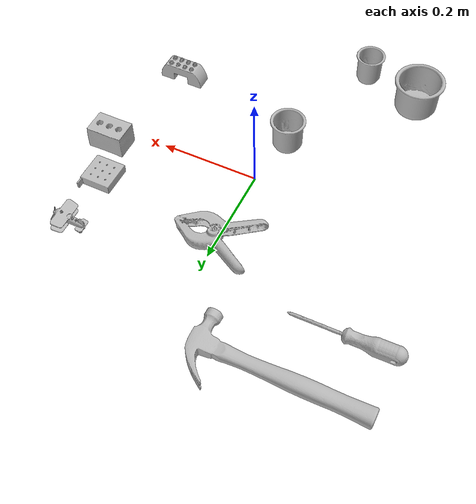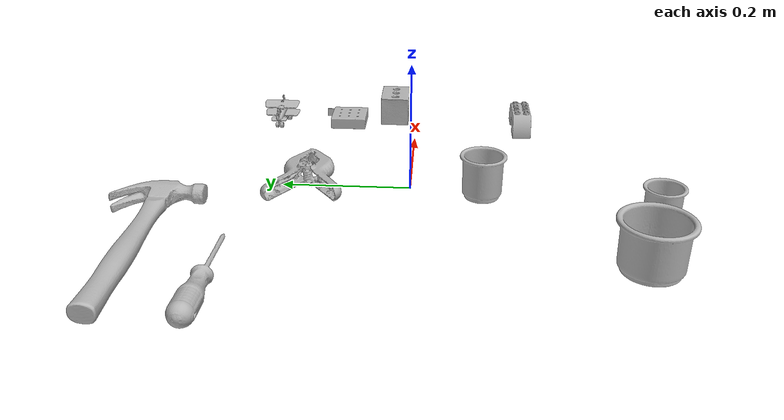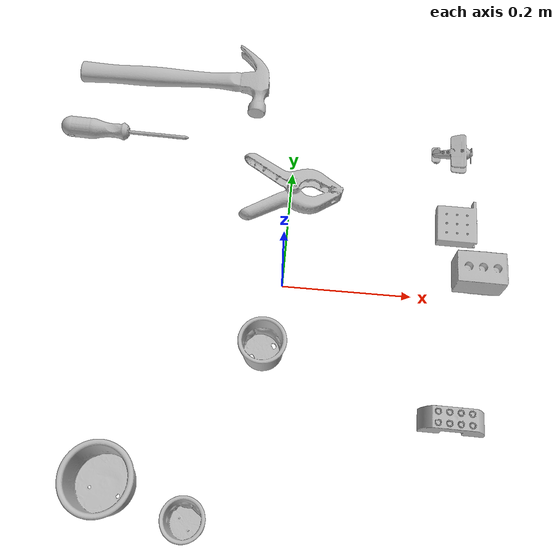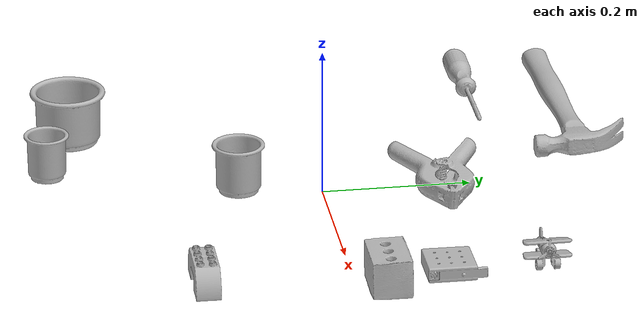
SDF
<?xml version="1.0" ?>
<sdf version="1.4">
  <world name="default">
    <light name="light1" type="point">
      <pose>0 0 1 0 0 0</pose>
      <diffuse>3 3 3 1</diffuse>
      <specular>3 3 3 1</specular>
    </light>
    <light name="light2" type="point">
      <pose>0 0.5 2 0 0 0</pose>
      <diffuse>1 1 1 1</diffuse>
      <specular>1 1 1 1</specular>
    </light>
    <light name="light3" type="point">
      <pose>0 0.5 2 0 0 0</pose>
      <diffuse>3 3 3 1</diffuse>
      <specular>3 3 3 1</specular>
    </light>
    <scene>
      <ambient>0.7 0.7 0.7</ambient>
    </scene>
    <model name="cup1">
      <link name="link_cup1">
        <collision name="default">
          <geometry>
            <mesh>
              <uri>model://j_cups/collision_meshes/collision.obj</uri>
              <scale>1.0 1.0 1.0</scale>
            </mesh>
          </geometry>
          <surface>
            <friction>
              <ode>
                <mu>0.5</mu>
                <mu2>0.5</mu2>
              </ode>
            </friction>
          </surface>
        </collision>
        <visual name="default">
          <geometry>
            <mesh>
              <uri>model://j_cups/visual_meshes/visual.dae</uri>
              <scale>1.0 1.0 1.0</scale>
            </mesh>
          </geometry>
        </visual>
        <inertial>
          <mass>0.1112113818526268</mass>
          <pose>0.0006164852529764175 0.0005398975918069482 -0.0013479019980877638 0.030303955005909274 0.03757984422505388 0.4386955526072484</pose>
          <inertia>
            <ixx>0.00016329347</ixx>
            <iyy>0.00016499148</iyy>
            <izz>0.00018824349</izz>
            <ixy>0</ixy>
            <ixz>0</ixz>
            <iyz>0</iyz>
          </inertia>
        </inertial>
      </link>
      <pose>-0.22005149722099304 -0.3199999928474426 0.037988994270563126 1.117587136756262e-08 -3.259629870438709e-09 1.1900556981265494e-07</pose>
    </model>
    <model name="cup2">
      <link name="link_cup2">
        <collision name="default">
          <geometry>
            <mesh>
              <uri>model://b_cups/collision_meshes/collision.obj</uri>
              <scale>1.0 1.0 1.0</scale>
            </mesh>
          </geometry>
          <surface>
            <friction>
              <ode>
                <mu>0.5</mu>
                <mu2>0.5</mu2>
              </ode>
            </friction>
          </surface>
        </collision>
        <visual name="default">
          <geometry>
            <mesh>
              <uri>model://b_cups/visual_meshes/visual.dae</uri>
              <scale>1.0 1.0 1.0</scale>
            </mesh>
          </geometry>
        </visual>
        <inertial>
          <mass>0.040588438510894775</mass>
          <pose>0.0005182006862014532 0.001805859268642962 -0.001338181202299893 0.11356319114734177 0.03872522211554688 -0.34569586720892936</pose>
          <inertia>
            <ixx>2.6567977e-05</ixx>
            <iyy>2.6063572e-05</iyy>
            <izz>2.235645e-05</izz>
            <ixy>0</ixy>
            <ixz>0</ixz>
            <iyz>0</iyz>
          </inertia>
        </inertial>
      </link>
      <pose>-0.10006058216094971 -0.35974207520484924 0.03199608996510506 -0.007628903243728663 -0.0038301339057181666 1.0297887028581817e-05</pose>
    </model>
    <model name="cup3">
      <link name="link_cup3">
        <collision name="default">
          <geometry>
            <mesh>
              <uri>model://d_cups/collision_meshes/collision.obj</uri>
              <scale>1.0 1.0 1.0</scale>
            </mesh>
          </geometry>
          <surface>
            <friction>
              <ode>
                <mu>0.5</mu>
                <mu2>0.5</mu2>
              </ode>
            </friction>
          </surface>
        </collision>
        <visual name="default">
          <geometry>
            <mesh>
              <uri>model://d_cups/visual_meshes/visual.dae</uri>
              <scale>1.0 1.0 1.0</scale>
            </mesh>
          </geometry>
        </visual>
        <inertial>
          <mass>0.030152590945363045</mass>
          <pose>0.000806804746389389 0.0019117394695058465 -0.0022666517179459333 0.2401234305416289 -0.2470973002062907 0.5942515272324471</pose>
          <inertia>
            <ixx>2.5244808e-05</ixx>
            <iyy>2.517175e-05</iyy>
            <izz>2.2850849e-05</izz>
            <ixy>0</ixy>
            <ixz>0</ixz>
            <iyz>0</iyz>
          </inertia>
        </inertial>
      </link>
      <pose>-0.020005997270345688 -0.11000104248523712 0.0346590057015419 -8.568167364497827e-08 -5.960462761551012e-08 2.3469326337900195e-07</pose>
    </model>
    <model name="toy1">
      <link name="link_toy1">
        <collision name="default">
          <geometry>
            <mesh>
              <uri>model://e_lego_duplo/collision_meshes/collision.obj</uri>
              <scale>1.0 1.0 1.0</scale>
            </mesh>
          </geometry>
          <surface>
            <friction>
              <ode>
                <mu>0.5</mu>
                <mu2>0.5</mu2>
              </ode>
            </friction>
          </surface>
        </collision>
        <visual name="default">
          <geometry>
            <mesh>
              <uri>model://e_lego_duplo/visual_meshes/visual.dae</uri>
              <scale>1.0 1.0 1.0</scale>
            </mesh>
          </geometry>
        </visual>
        <inertial>
          <mass>0.09282131493091583</mass>
          <pose>0.0003256045747548342 0.00023485456767957658 0.0019521460635587573 -0.022567664257634346 -6.825452093688492e-05 -0.007625138047361518</pose>
          <inertia>
            <ixx>1.9356308e-05</ixx>
            <iyy>7.944328e-05</iyy>
            <izz>7.736177e-05</izz>
            <ixy>0</ixy>
            <ixz>0</ixz>
            <iyz>0</iyz>
          </inertia>
        </inertial>
      </link>
      <pose>0.26019003987312317 -0.1900244951248169 0.021808994933962822 5.960088616307776e-08 -2.4010620718503533e-09 -1.3224065760702944e-07</pose>
    </model>
    <model name="toy2">
      <link name="link_toy2">
        <collision name="default">
          <geometry>
            <mesh>
              <uri>model://nine_hole_peg_test/collision_meshes/collision.obj</uri>
              <scale>0.5 0.5 0.5</scale>
            </mesh>
          </geometry>
          <surface>
            <friction>
              <ode>
                <mu>0.5</mu>
                <mu2>0.5</mu2>
              </ode>
            </friction>
          </surface>
        </collision>
        <visual name="default">
          <geometry>
            <mesh>
              <uri>model://nine_hole_peg_test/visual_meshes/visual.dae</uri>
              <scale>0.5 0.5 0.5</scale>
            </mesh>
          </geometry>
        </visual>
        <inertial>
          <mass>0.0661587193608284</mass>
          <pose>-0.002308693015947938 -0.0048238071613013744 1.3230345757619943e-05 -0.0014666794270044752 0.0007194176174711586 -0.6342418340283942</pose>
          <inertia>
            <ixx>2.5862508e-05</ixx>
            <iyy>2.4147552e-05</iyy>
            <izz>4.531874e-05</izz>
            <ixy>0</ixy>
            <ixz>0</ixz>
            <iyz>0</iyz>
          </inertia>
        </inertial>
      </link>
      <pose>0.2712397873401642 0.12876850366592407 0.010385498404502869 -1.105945557355951e-09 -1.4551915228313416e-10 9.663382011018662e-13</pose>
    </model>
    <model name="toy3">
      <link name="link_toy3">
        <collision name="default">
          <geometry>
            <mesh>
              <uri>model://foam_brick/collision_meshes/collision.obj</uri>
              <scale>1.0 1.0 1.0</scale>
            </mesh>
          </geometry>
          <surface>
            <friction>
              <ode>
                <mu>0.5</mu>
                <mu2>0.5</mu2>
              </ode>
            </friction>
          </surface>
        </collision>
        <visual name="default">
          <geometry>
            <mesh>
              <uri>model://foam_brick/visual_meshes/visual.dae</uri>
              <scale>1.0 1.0 1.0</scale>
            </mesh>
          </geometry>
        </visual>
        <inertial>
          <mass>0.15239986777305603</mass>
          <pose>-0.00025224717683158815 0.0003458431747276336 -0.00025321010616607964 -0.29401565585717926 0.017274441097588973 -0.0007449887293440311</pose>
          <inertia>
            <ixx>6.6571105e-05</ixx>
            <iyy>0.00010628419</iyy>
            <izz>0.00010763494</izz>
            <ixy>0</ixy>
            <ixz>0</ixz>
            <iyz>0</iyz>
          </inertia>
        </inertial>
      </link>
      <pose>0.30026140809059143 0.03940713033080101 0.025917526334524155 0.013816495141267185 0.004276187208651049 0.00016982233641622387</pose>
    </model>
    <model name="toy4">
      <link name="link_toy4">
        <collision name="default">
          <geometry>
            <mesh>
              <uri>model://a_toy_airplane/collision_meshes/collision.obj</uri>
              <scale>0.25 0.25 0.25</scale>
            </mesh>
          </geometry>
          <surface>
            <friction>
              <ode>
                <mu>0.5</mu>
                <mu2>0.5</mu2>
              </ode>
            </friction>
          </surface>
        </collision>
        <visual name="default">
          <geometry>
            <mesh>
              <uri>model://a_toy_airplane/visual_meshes/visual.dae</uri>
              <scale>0.25 0.25 0.25</scale>
            </mesh>
          </geometry>
        </visual>
        <inertial>
          <mass>0.01630575954914093</mass>
          <pose>0.006291272584348917 -0.0009268299327231944 -0.0002990612993016839 -0.012016942866631759 -0.1466350865210375 0.004149072887705313</pose>
          <inertia>
            <ixx>3.7008767e-06</ixx>
            <iyy>5.392928e-06</iyy>
            <izz>6.314456e-06</izz>
            <ixy>0</ixy>
            <ixz>0</ixz>
            <iyz>0</iyz>
          </inertia>
        </inertial>
      </link>
      <pose>0.2598024010658264 0.25076866149902344 0.023090017959475517 1.5169453019675248e-05 -3.0399754912220712e-05 1.916780302726082e-06</pose>
    </model>
    <model name="hardware1">
      <link name="link_hardware1">
        <collision name="default">
          <geometry>
            <mesh>
              <uri>model://phillips_screwdriver/collision_meshes/collision.obj</uri>
              <scale>1.0 1.0 1.0</scale>
            </mesh>
          </geometry>
          <surface>
            <friction>
              <ode>
                <mu>0.5</mu>
                <mu2>0.5</mu2>
              </ode>
            </friction>
          </surface>
        </collision>
        <visual name="default">
          <geometry>
            <mesh>
              <uri>model://phillips_screwdriver/visual_meshes/visual.dae</uri>
              <scale>1.0 1.0 1.0</scale>
            </mesh>
          </geometry>
        </visual>
        <inertial>
          <mass>0.05757145583629608</mass>
          <pose>-0.04777182266116142 0.001036230125464499 -0.000455554953077808 -0.1572215307256514 0.005850991069928943 -0.0021567397451199392</pose>
          <inertia>
            <ixx>6.764056e-06</ixx>
            <iyy>8.480946e-05</iyy>
            <izz>8.4881525e-05</izz>
            <ixy>0</ixy>
            <ixz>0</ixz>
            <iyz>0</iyz>
          </inertia>
        </inertial>
      </link>
      <pose>-0.2921823263168335 0.2479633390903473 0.015409654937684536 0.06560532871940805 0.03756749869867564 0.0017119508840567617</pose>
    </model>
    <model name="hardware2">
      <link name="link_hardware2">
        <collision name="default">
          <geometry>
            <mesh>
              <uri>model://hammer/collision_meshes/collision.obj</uri>
              <scale>1.0 1.0 1.0</scale>
            </mesh>
          </geometry>
          <surface>
            <friction>
              <ode>
                <mu>0.5</mu>
                <mu2>0.5</mu2>
              </ode>
            </friction>
          </surface>
        </collision>
        <visual name="default">
          <geometry>
            <mesh>
              <uri>model://hammer/visual_meshes/visual.dae</uri>
              <scale>1.0 1.0 1.0</scale>
            </mesh>
          </geometry>
        </visual>
        <inertial>
          <mass>0.19043192267417908</mass>
          <pose>0.00941577646881342 -0.011892358772456646 -0.0001235063245985657 0.023155672419862355 -0.004792164441448863 -0.012760315407460211</pose>
          <inertia>
            <ixx>8.15718e-05</ixx>
            <iyy>0.0022103586</iyy>
            <izz>0.002273686</izz>
            <ixy>0</ixy>
            <ixz>0</ixz>
            <iyz>0</iyz>
          </inertia>
        </inertial>
      </link>
      <pose>-0.20809011161327362 0.3765750527381897 0.01626737043261528 -0.0051991249554406115 -0.001380234846004557 -3.567215514783677e-05</pose>
    </model>
    <model name="hardware3">
      <link name="link_hardware3">
        <collision name="default">
          <geometry>
            <mesh>
              <uri>model://large_clamp/collision_meshes/collision.obj</uri>
              <scale>1.0 1.0 1.0</scale>
            </mesh>
          </geometry>
          <surface>
            <friction>
              <ode>
                <mu>0.5</mu>
                <mu2>0.5</mu2>
              </ode>
            </friction>
          </surface>
        </collision>
        <visual name="default">
          <geometry>
            <mesh>
              <uri>model://large_clamp/visual_meshes/visual.dae</uri>
              <scale>1.0 1.0 1.0</scale>
            </mesh>
          </geometry>
        </visual>
        <inertial>
          <mass>0.18636001646518707</mass>
          <pose>0.006369354669004679 0.0003585688828025013 -0.0001839799078879878 -0.0021330740505354343 0.009671591251539349 0.02663317297682702</pose>
          <inertia>
            <ixx>0.0001644205</ixx>
            <iyy>0.00031224336</iyy>
            <izz>0.00045169977</izz>
            <ixy>0</ixy>
            <ixz>0</ixz>
            <iyz>0</iyz>
          </inertia>
        </inertial>
      </link>
      <pose>0.0016311872750520706 0.16177932918071747 0.018503982573747635 -0.012137452478690138 0.04694577750201833 -0.0008870514400120258</pose>
    </model>
  </world>
</sdf>
